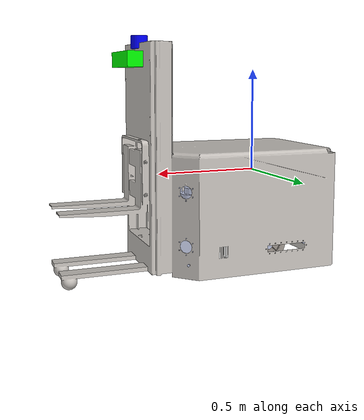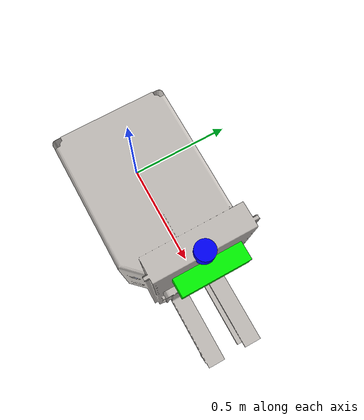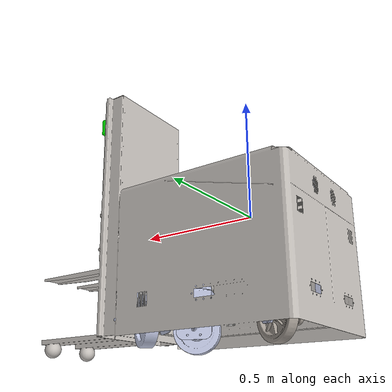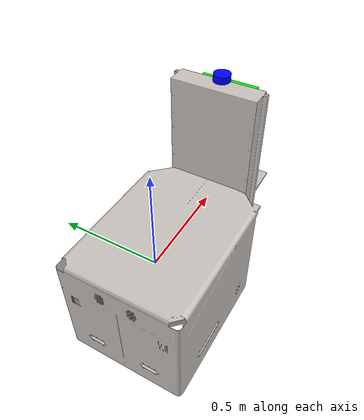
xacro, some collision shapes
<?xml version="1.0" encoding="utf-8"?>
<robot xmlns:xacro="http://www.ros.org/wiki/xacro" name="WAFL2025">

  <link name="base_footprint"/>

  <link
    name="base_link">
    <inertial>
      <origin
        xyz="0.44764 -8.6961E-05 -0.19475"
        rpy="0 0 0" />
      <mass
        value="51.991" />
      <inertia
        ixx="1.7717"
        ixy="0.0070117"
        ixz="-0.21444"
        iyy="2.3738"
        iyz="0.11565"
        izz="1.7629" />
    </inertial>
    <visual>
      <origin
        xyz="0 0 0"
        rpy="0 0 0" />
      <geometry>
        <mesh
          filename="package://WAFL2025/meshes/base_link.STL" />
      </geometry>
      <material
        name="">
        <color
          rgba="0.78039 0.76078 0.74118 1" />
      </material>
    </visual>
    <collision>
      <origin
        xyz="0 0 0"
        rpy="0 0 0" />
      <geometry>
        <mesh
          filename="package://WAFL2025/meshes/base_link.STL" />
      </geometry>
    </collision>
  </link>
  <link
    name="left_web">
    <inertial>
      <origin
        xyz="-0.000209 -0.0002904 0.057128"
        rpy="0 0 0" />
      <mass
        value="1.4293" />
      <inertia
        ixx="0.0041861"
        ixy="-0.00043848"
        ixz="-2.1438E-05"
        iyy="0.0038924"
        iyz="-2.9788E-05"
        izz="0.0042523" />
    </inertial>
    <visual>
      <origin
        xyz="0 0 0"
        rpy="0 0 0" />
      <geometry>
        <mesh
          filename="package://WAFL2025/meshes/left_web.STL" />
      </geometry>
      <material
        name="">
        <color
          rgba="0.79216 0.81961 0.92941 1" />
      </material>
    </visual>
    <collision>
      <origin
        xyz="0 0 0"
        rpy="0 0 0" />
      <geometry>
        <mesh
          filename="package://WAFL2025/meshes/left_web.STL" />
      </geometry>
    </collision>
  </link>
  <joint
    name="leftweb"
    type="continuous">
    <origin
      xyz="0.37473 0.16927 -0.351"
      rpy="0 0 0" />
    <parent
      link="base_link" />
    <child
      link="left_web" />
    <axis
      xyz="0 0 -1" />
    <limit
      effort="10"
      velocity="10" />
    <dynamics
      damping="0.1"
      friction="0.1" />
  </joint>
  <link
    name="left_wheel">
    <inertial>
      <origin
        xyz="6.1764E-05 -1.0018E-05 -7.5402E-05"
        rpy="0 0 0" />
      <mass
        value="1.4135" />
      <inertia
        ixx="0.0037641"
        ixy="-2.5259E-07"
        ixz="-2.7508E-08"
        iyy="0.0037626"
        iyz="4.464E-09"
        izz="0.0064566" />
    </inertial>
    <visual>
      <origin
        xyz="0 0 0"
        rpy="0 0 0" />
      <geometry>
        <mesh
          filename="package://WAFL2025/meshes/left_wheel.STL" />
      </geometry>
      <material
        name="">
        <color
          rgba="0.79216 0.81961 0.92941 1" />
      </material>
    </visual>
    <collision>
      <origin
        xyz="0 0 0"
        rpy="0 0 0" />
      <geometry>
        <mesh
          filename="package://WAFL2025/meshes/left_wheel.STL" />
      </geometry>
    </collision>
  </link>
  <joint
    name="leftwheel"
    type="continuous">
    <origin
      xyz="0 0 -0.158"
      rpy="-1.5708 0 -0.62381" />
    <parent
      link="left_web" />
    <child
      link="left_wheel" />
    <axis
      xyz="0 0 -1" />
    <limit
      effort="10"
      velocity="10" />
    <dynamics
      damping="0.1"
      friction="0.1" />
  </joint>
  <link
    name="right_web">
    <inertial>
      <origin
        xyz="0.00013451 -0.00030111 0.05303"
        rpy="0 0 0" />
      <mass
        value="1.5507" />
      <inertia
        ixx="0.0044827"
        ixy="0.0003444"
        ixz="1.4968E-05"
        iyy="0.0038656"
        iyz="-3.3509E-05"
        izz="0.0045195" />
    </inertial>
    <visual>
      <origin
        xyz="0 0 0"
        rpy="0 0 0" />
      <geometry>
        <mesh
          filename="package://WAFL2025/meshes/right_web.STL" />
      </geometry>
      <material
        name="">
        <color
          rgba="0.79216 0.81961 0.92941 1" />
      </material>
    </visual>
    <collision>
      <origin
        xyz="0 0 0"
        rpy="0 0 0" />
      <geometry>
        <mesh
          filename="package://WAFL2025/meshes/right_web.STL" />
      </geometry>
    </collision>
  </link>
  <joint
    name="rightweb"
    type="continuous">
    <origin
      xyz="0.37493 -0.17027 -0.351"
      rpy="0 0 0" />
    <parent
      link="base_link" />
    <child
      link="right_web" />
    <axis
      xyz="0 0 -1" />
    <limit
      effort="10"
      velocity="10" />
    <dynamics
      damping="0.1"
      friction="0.1" />
  </joint>
  <link
    name="right_wheel">
    <inertial>
      <origin
        xyz="6.1764E-05 -1.0018E-05 -7.5402E-05"
        rpy="0 0 0" />
      <mass
        value="1.4135" />
      <inertia
        ixx="0.0037641"
        ixy="-2.5259E-07"
        ixz="-2.7508E-08"
        iyy="0.0037626"
        iyz="4.464E-09"
        izz="0.0064566" />
    </inertial>
    <visual>
      <origin
        xyz="0 0 0"
        rpy="0 0 0" />
      <geometry>
        <mesh
          filename="package://WAFL2025/meshes/right_wheel.STL" />
      </geometry>
      <material
        name="">
        <color
          rgba="0.79216 0.81961 0.92941 1" />
      </material>
    </visual>
    <collision>
      <origin
        xyz="0 0 0"
        rpy="0 0 0" />
      <geometry>
        <mesh
          filename="package://WAFL2025/meshes/right_wheel.STL" />
      </geometry>
    </collision>
  </link>
  <joint
    name="rightwheel"
    type="continuous">
    <origin
      xyz="0 0 -0.158"
      rpy="-1.5708 0 0.4201" />
    <parent
      link="right_web" />
    <child
      link="right_wheel" />
    <axis
      xyz="0 0 -1" />
    <limit
      effort="10"
      velocity="10" />
    <dynamics
      damping="0.1"
      friction="0.1" />
  </joint>
  <link
    name="castor">
    <inertial>
      <origin
        xyz="-0.014681 8.0115E-06 -0.033862"
        rpy="0 0 0" />
      <mass
        value="2.8863" />
      <inertia
        ixx="0.0081139"
        ixy="0.00018131"
        ixz="5.9224E-07"
        iyy="0.0092867"
        iyz="1.2529E-06"
        izz="0.0024721" />
    </inertial>
    <visual>
      <origin
        xyz="0 0 0"
        rpy="0 0 0" />
      <geometry>
        <mesh
          filename="package://WAFL2025/meshes/castor.STL" />
      </geometry>
      <material
        name="">
        <color
          rgba="0.79216 0.81961 0.93333 1" />
      </material>
    </visual>
    <collision>
      <origin
        xyz="0 0 0"
        rpy="0 0 0" />
      <geometry>
        <mesh
          filename="package://WAFL2025/meshes/castor.STL" />
      </geometry>
    </collision>
  </link>
  <joint
    name="castorjoint"
    type="continuous">
    <origin
      xyz="-0.087559 0 -0.374"
      rpy="0 0 0" />
    <parent
      link="base_link" />
    <child
      link="castor" />
    <axis
      xyz="0 0 1" />
    <limit
      effort="10"
      velocity="10" />
    <dynamics
      damping="0.3"
      friction="0.3" />
  </joint>
  <link
    name="castor_wheel">
    <inertial>
      <origin
        xyz="5.8206E-05 -1.471E-05 -0.038908"
        rpy="0 0 0" />
      <mass
        value="1.5287" />
      <inertia
        ixx="0.0036338"
        ixy="-2.8012E-07"
        ixz="-2.2345E-07"
        iyy="0.0036334"
        iyz="6.2503E-07"
        izz="0.0066956" />
    </inertial>
    <visual>
      <origin
        xyz="0 0 0"
        rpy="0 0 0" />
      <geometry>
        <mesh
          filename="package://WAFL2025/meshes/castor_wheel.STL" />
      </geometry>
      <material
        name="">
        <color
          rgba="0.65098 0.61961 0.58824 1" />
      </material>
    </visual>
    <collision>
      <origin
        xyz="0 0 0"
        rpy="0 0 0" />
      <geometry>
        <mesh
          filename="package://WAFL2025/meshes/castor_wheel.STL" />
      </geometry>
    </collision>
  </link>
  <joint
    name="castorwheel"
    type="continuous">
    <origin
      xyz="0.0087891 0.018594 -0.135"
      rpy="-1.5708 0 -0.44156" />
    <parent
      link="castor" />
    <child
      link="castor_wheel" />
    <axis
      xyz="0 0 1" />
    <limit
      effort="10"
      velocity="10" />
    <dynamics
      damping="0.1"
      friction="0.1" />

  </joint>
   <!-- hok -->
  <link name="hokuyo_link">
   <inertial>
     <mass value="0.5"/>
     <inertia ixx="0.001" ixy="0" ixz="0"
             iyy="0.001" iyz="0"
             izz="0.001"/>
   </inertial>
   <visual>
    <geometry>
      <cylinder radius="0.04" length="0.06"/>  <!-- Adjust size based on your Hokuyo model -->
    </geometry>
    <material name="Blue">
      <color rgba="0 0 1 1"/>
    </material>
   </visual>
   <collision>
    <geometry>
      <cylinder radius="0.04" length="0.06"/>
    </geometry>
   </collision>
  </link>
  <joint name="hokuyo_joint" type="fixed">
    <parent link="base_link"/>
    <child link="hokuyo_link"/>
    <origin xyz="0.59 0 0.5" rpy="0 0 0"/>  <!-- Adjust position -->
  </joint>
  <!-- Hokuyo -->
  <gazebo reference="hokuyo_link">
    <sensor type="ray" name="hokuyo_laser">
      <pose>0 0 0 0 0 0</pose>
      <visualize>
    	  true
	</visualize>
      <update_rate>10</update_rate>
      <ray>
       <scan>
         <horizontal>
          <samples>720</samples>
          <resolution>1</resolution>
          <min_angle>-1.57</min_angle>
          <max_angle>1.57</max_angle>
         </horizontal>
       </scan>
       <range>
         <min>0.1</min>
         <max>30.0</max>
         <resolution>0.01</resolution>
       </range>
      </ray>
      <plugin name="gazebo_ros_laser" filename="libgazebo_ros_laser.so">
       <topicName>/scan</topicName>
       <frameName>hokuyo_link</frameName>
      </plugin>
    </sensor>
  </gazebo>

  <!-- Kinect-->

  <link name="kinect_link">
   <visual>
    <geometry>
      <mesh filename="package://WAFL2025/meshes/kinect.dae" scale="1 1 1"/>
    </geometry>
    <material name="Green">
      <color rgba="0 1 0 1"/>  <!-- Makes it blue -->
    </material>
   </visual>

   <collision>
    <geometry>
      <box size="0.073 0.276 0.072"/>
    </geometry>
   </collision>

   <inertial>
    <mass value="0.5"/>  <!-- Increase mass if Kinect is not stable -->
    <origin xyz="0 0 0" rpy="0 0 0"/>
    <inertia ixx="0.005" iyy="0.005" izz="0.005" ixy="0" ixz="0" iyz="0"/>
   </inertial>
  </link>

  <joint name="kinect_joint" type="fixed">
    <parent link="base_link"/>
    <child link="kinect_link"/>
    <origin xyz="0.65 0 0.42" rpy="0 0 0"/>
  </joint>

<!-- Kinect Plugin -->
<gazebo reference="kinect_link">
  <sensor type="depth" name="kinect_sensor">
    <update_rate>20</update_rate>
    <camera>
      <horizontal_fov>1.047198</horizontal_fov>
      <image>
        <width>640</width>
        <height>480</height>
        <format>R8G8B8</format>
      </image>
      <clip>
        <near>0.05</near>
        <far>3</far>
      </clip>
    </camera>
    <plugin name="camera_plugin" filename="libgazebo_ros_openni_kinect.so">
      <cameraName>camera_ir</cameraName>
      <imageTopicName>/camera/color/image_raw</imageTopicName>
      <cameraInfoTopicName>/camera/color/camera_info</cameraInfoTopicName>
      <depthImageTopicName>/camera/depth/image_raw</depthImageTopicName>
      <depthImageCameraInfoTopicName>/camera/depth/camera_info</depthImageCameraInfoTopicName>
      <pointCloudTopicName>/camera/depth/points</pointCloudTopicName>
      <frameName>kinect_link</frameName>
      <pointCloudCutoff>0.5</pointCloudCutoff>
      <pointCloudCutoffMax>3.0</pointCloudCutoffMax>
    </plugin>
  </sensor>
</gazebo>

<joint name="chassis_base_footprint" type="fixed">
  <origin xyz="0 0 0.125" rpy="0 0 0"/>
  <parent link="base_footprint"/>
  <child link="base_link"/>
</joint>

<link name="imu_link">
  <inertial>
    <mass value="0.01" />
    <origin xyz="0 0 0" />
    <inertia ixx="0.0001" ixy="0.0" ixz="0.0" iyy="0.0001" iyz="0.0" izz="0.0001" />
  </inertial>
</link>

<joint name="imu_joint" type="fixed">
  <parent link="base_link" />  <!-- Attach IMU to the base link -->
  <child link="imu_link" />
  <origin xyz="0 0 0.1" rpy="0 0 0" />  <!-- Adjust position as needed -->
</joint>

<!-- Gazebo IMU plugin -->
<gazebo reference="imu_link">
  <sensor name="imu_sensor" type="imu">
    <always_on>true</always_on>
    <update_rate>100</update_rate>
    <visualize>true</visualize>
    <imu>
      <topic>/imu/data</topic>
      <frame_id>imu_link</frame_id>
      <noise>
        <type>gaussian</type>
        <rate>
          <mean>0.0</mean>
          <stddev>0.0002</stddev>
        </rate>
        <accel>
          <mean>0.0</mean>
          <stddev>0.017</stddev>
        </accel>
      </noise>
    </imu>
  </sensor>
</gazebo>

<!-- Gazebo odometry plugin -->
<gazebo>
  <plugin name="gazebo_ros_odometry" filename="libgazebo_ros_odometry.so">
    <alwaysOn>true</alwaysOn>
    <updateRate>50.0</updateRate>
    <bodyName>base_link</bodyName>  <!-- The link to track for odometry -->
    <topicName>/odom</topicName>    <!-- Topic to publish odometry -->
    <frameName>odom</frameName>     <!-- Reference frame for odometry -->
    <robotNamespace>/</robotNamespace>
  </plugin>
</gazebo>

<gazebo>
    <plugin name="gazebo_ros_control" filename="libgazebo_ros_control.so"/>
</gazebo>

<transmission name="leftweb_transmission" type="transmission_interface/SimpleTransmission">
    <actuator name="leftweb_motor">
      <mechanicalReduction>1</mechanicalReduction>
    </actuator>
    <joint name="leftweb">
      <hardwareInterface>hardware_interface/EffortJointInterface</hardwareInterface>
    </joint>
</transmission>

<transmission name="leftwheel_transmission" type="transmission_interface/SimpleTransmission">
    <actuator name="leftwheel_motor">
      <mechanicalReduction>1</mechanicalReduction>
    </actuator>
    <joint name="leftwheel">
      <hardwareInterface>hardware_interface/EffortJointInterface</hardwareInterface>
    </joint>
</transmission>

<transmission name="rightweb_transmission" type="transmission_interface/SimpleTransmission">
    <actuator name="rightweb_motor">
      <mechanicalReduction>1</mechanicalReduction>
    </actuator>
    <joint name="rightweb">
      <hardwareInterface>hardware_interface/EffortJointInterface</hardwareInterface>
    </joint>
</transmission>

<transmission name="rightwheel_transmission" type="transmission_interface/SimpleTransmission">
    <actuator name="rightwheel_motor">
      <mechanicalReduction>1</mechanicalReduction>
    </actuator>
    <joint name="rightwheel">
      <hardwareInterface>hardware_interface/EffortJointInterface</hardwareInterface>
    </joint>
</transmission>

<transmission name="castorjoint_transmission" type="transmission_interface/SimpleTransmission">
    <actuator name="castorjoint_motor">
      <mechanicalReduction>1</mechanicalReduction>
    </actuator>
    <joint name="castorjoint">
      <hardwareInterface>hardware_interface/EffortJointInterface</hardwareInterface>
    </joint>
</transmission>

<transmission name="castorwheel_transmission" type="transmission_interface/SimpleTransmission">
    <actuator name="castorwheel_motor">
      <mechanicalReduction>1</mechanicalReduction>
    </actuator>
    <joint name="castorwheel">
      <hardwareInterface>hardware_interface/EffortJointInterface</hardwareInterface>
    </joint>
</transmission>

</robot>
